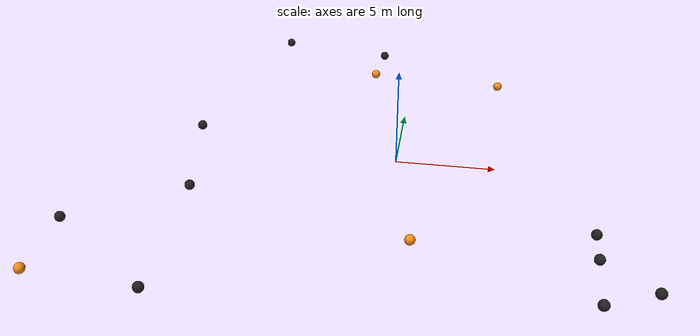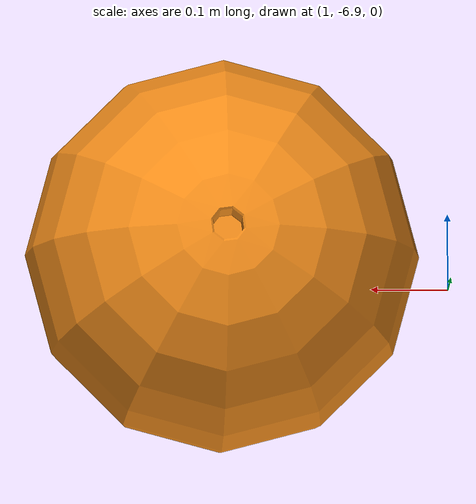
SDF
<?xml version="1.0"?>
<!-- automatically generated by the 'generate_avoid_obstacles_buoys.py' script -->
<sdf version="1.6">
  <model name="obstacles_phase2_0">
    <include>
      <name>mb_round_buoy_orange_0</name>
      <pose>1.3021482537289621 -6.648918447186116 0.0 0 0 0 </pose>
      <uri>model://mb_round_buoy_orange</uri>
    </include>

    <include>
      <name>mb_round_buoy_orange_1</name>
      <pose>-2.264472277526007 10.34328396959711 0.0 0 0 0 </pose>
      <uri>model://mb_round_buoy_orange</uri>
    </include>

    <include>
      <name>mb_round_buoy_orange_2</name>
      <pose>-14.858434314270824 -11.352926376506574 0.0 0 0 0 </pose>
      <uri>model://mb_round_buoy_orange</uri>
    </include>

    <include>
      <name>mb_round_buoy_orange_3</name>
      <pose>5.122472541803358 9.775582653151428 0.0 0 0 0 </pose>
      <uri>model://mb_round_buoy_orange</uri>
    </include>

    <include>
      <name>mb_round_buoy_black_0</name>
      <pose>-10.898802309451412 2.2527998828174987 0.0 0 0 0 </pose>
      <uri>model://mb_round_buoy_black</uri>
    </include>

    <include>
      <name>mb_round_buoy_black_1</name>
      <pose>11.73965862936792 -8.723936336484313 0.0 0 0 0 </pose>
      <uri>model://mb_round_buoy_black</uri>
    </include>

    <include>
      <name>mb_round_buoy_black_2</name>
      <pose>-9.440153413497749 -11.748693286072346 0.0 0 0 0 </pose>
      <uri>model://mb_round_buoy_black</uri>
    </include>

    <include>
      <name>mb_round_buoy_black_3</name>
      <pose>-8.409075221250236 14.35871354122109 0.0 0 0 0 </pose>
      <uri>model://mb_round_buoy_black</uri>
    </include>

    <include>
      <name>mb_round_buoy_black_4</name>
      <pose>9.3504944726797 -9.841769618022173 0.0 0 0 0 </pose>
      <uri>model://mb_round_buoy_black</uri>
    </include>

    <include>
      <name>mb_round_buoy_black_5</name>
      <pose>9.486742461775197 -6.777787588749025 0.0 0 0 0 </pose>
      <uri>model://mb_round_buoy_black</uri>
    </include>

    <include>
      <name>mb_round_buoy_black_6</name>
      <pose>-2.04887449010635 13.20089458867124 0.0 0 0 0 </pose>
      <uri>model://mb_round_buoy_black</uri>
    </include>

    <include>
      <name>mb_round_buoy_black_7</name>
      <pose>9.529481363301823 -4.916641496373039 0.0 0 0 0 </pose>
      <uri>model://mb_round_buoy_black</uri>
    </include>

    <include>
      <name>mb_round_buoy_black_8</name>
      <pose>-9.7376863877299 -3.8150386113023043 0.0 0 0 0 </pose>
      <uri>model://mb_round_buoy_black</uri>
    </include>

    <include>
      <name>mb_round_buoy_black_9</name>
      <pose>-14.829344779422797 -7.427209396654787 0.0 0 0 0 </pose>
      <uri>model://mb_round_buoy_black</uri>
    </include>

  </model>
</sdf>

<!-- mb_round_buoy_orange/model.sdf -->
<sdf version="1.6">
  <model name="mb_round_buoy_orange">
    <link name="link">
      <inertial>
        <pose>0 0 -2 0 0 0</pose>
        <!-- Mass determined based on buoyancy geometry so object
             floats at mid-point of sphere -->
        <mass>3.5</mass>
        <!-- Mark only - based on cylinder -->
        <inertia>
          <ixx>1.0</ixx>
          <ixy>0</ixy>
          <ixz>0</ixz>
          <iyy>1.0</iyy>
          <iyz>0</iyz>
          <izz>0.1</izz>
        </inertia>
      </inertial>
      <collision name="collision">
        <geometry>
          <sphere>
            <radius>0.25</radius>
          </sphere>
        </geometry>
      </collision>
      <visual name="visual">
        <geometry>
	        <mesh><uri>model://mb_round_buoy_orange/meshes/mb_round_buoy.dae</uri></mesh>
        </geometry>
        <material>
          <script>
            <uri>model://mb_round_buoy_orange/materials/scripts/mb_round_buoy.material</uri>
            <name>mb_round_buoy/Orange</name>
          </script>
        </material>
      </visual>
    </link>
    <plugin name="BuoyancyPlugin" filename="libbuoyancy_gazebo_plugin.so">
      <wave_model>ocean_waves</wave_model>
      <fluid_density>1000</fluid_density>
      <fluid_level>0.0</fluid_level>
      <linear_drag>25.0</linear_drag>
      <angular_drag>2.0</angular_drag>
      <buoyancy name="buoyancy_sphere">
        <link_name>link</link_name>
        <pose>0 0 0.02 0 0 0</pose>
        <geometry>
          <sphere>
            <radius>0.235</radius>
          </sphere>
        </geometry>
      </buoyancy>
    </plugin>
  </model>
</sdf>

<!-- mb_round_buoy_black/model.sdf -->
<sdf version="1.6">
  <model name="mb_round_buoy_black">
    <link name="link">
      <inertial>
        <pose>0 0 -2 0 0 0</pose>
        <!-- Mass determined based on buoyancy geometry so object
             floats at mid-point of sphere -->
        <mass>3.5</mass>
        <!-- Mark only - based on cylinder -->
        <inertia>
          <ixx>1.0</ixx>
          <ixy>0</ixy>
          <ixz>0</ixz>
          <iyy>1.0</iyy>
          <iyz>0</iyz>
          <izz>0.1</izz>
        </inertia>
      </inertial>
      <collision name="collision">
        <geometry>
          <sphere>
            <radius>0.25</radius>
          </sphere>
        </geometry>
      </collision>
      <visual name="visual">
        <geometry>
	        <mesh><uri>model://mb_round_buoy_orange/meshes/mb_round_buoy.dae</uri></mesh>
        </geometry>
        <material>
          <script>
            <uri>file://media/materials/scripts/gazebo.material</uri>
            <name>Gazebo/Black</name>
          </script>
        </material>
      </visual>
    </link>
    <plugin name="BuoyancyPlugin" filename="libbuoyancy_gazebo_plugin.so">
      <wave_model>ocean_waves</wave_model>
      <fluid_density>1000</fluid_density>
      <fluid_level>0.0</fluid_level>
      <linear_drag>25.0</linear_drag>
      <angular_drag>2.0</angular_drag>
      <buoyancy name="buoyancy_sphere">
        <link_name>link</link_name>
        <pose>0 0 0.02 0 0 0</pose>
        <geometry>
          <sphere>
            <radius>0.235</radius>
          </sphere>
        </geometry>
      </buoyancy>
    </plugin>
  </model>
</sdf>
